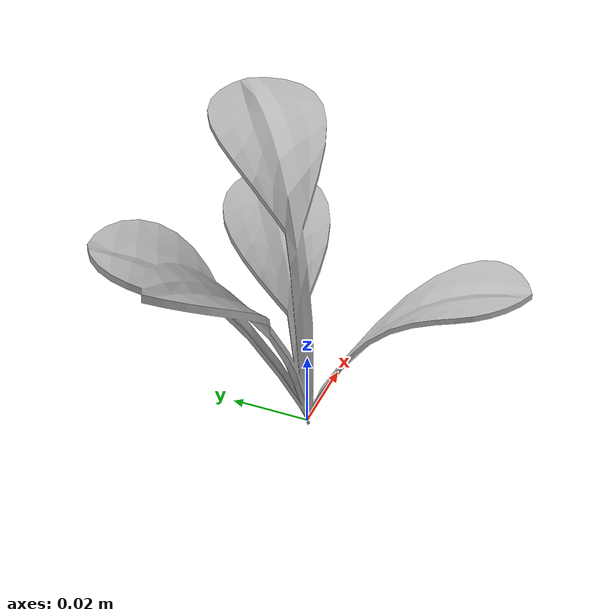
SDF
<sdf version="1.6">
  <model name="sugar_beet_25">
    <static>true</static>
    <link name="body">
      <visual name="visual">
        <geometry>
          <mesh>
            <uri>file:///sugar_beet_25/media/sugar_beet.dae</uri>
          </mesh>
        </geometry>
      </visual>
    </link>
  </model>
</sdf>
